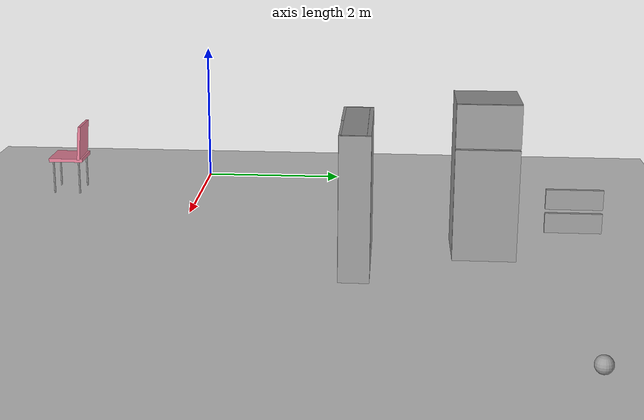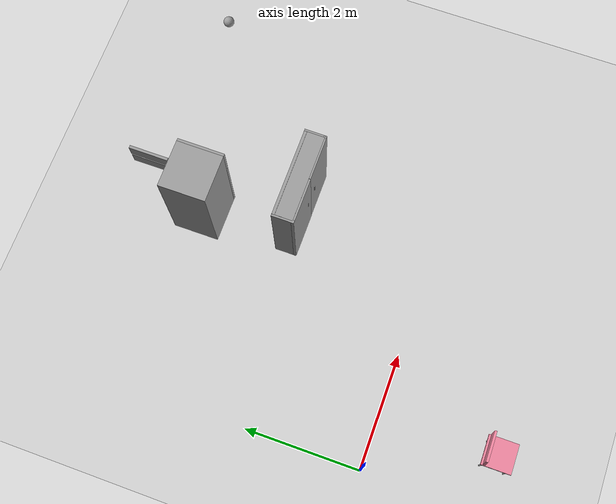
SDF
<sdf version="1.6">
 <world name="default">
  <model name="ground_plane">
   <static>1</static>
   <link name="link">
    <collision name="collision">
     <geometry><plane><normal>0 0 1</normal><size>100 100</size></plane></geometry>
     <surface>
      <contact><collide_bitmask>65535</collide_bitmask></contact>
      <friction><ode><mu>100</mu><mu2>50</mu2></ode></friction>
     </surface>
    </collision>
    <visual name="visual">
     <cast_shadows>0</cast_shadows>
     <geometry><plane><normal>0 0 1</normal><size>100 100</size></plane></geometry>
     <material>
      <script><uri>file://media/materials/scripts/gazebo.material</uri><name>Gazebo/Grey</name></script>
     </material>
    </visual>
   </link>
  </model>
  <model name="my_wardrobe_0">
   <link name="link">
    <inertial>
     <mass>1</mass>
     <inertia>
      <ixx>0.166667</ixx>
      <ixy>0</ixy>
      <ixz>0</ixz>
      <iyy>0.166667</iyy>
      <iyz>0</iyz>
      <izz>0.166667</izz>
     </inertia>
    </inertial>
    <pose>0.010503 -0.018536 0.006993 0 -0 0</pose>
    <visual name="visual">
     <geometry><box><size>0.05 1.5 1.8</size></box></geometry>
     <material>
      <script><name>Gazebo/Grey</name><uri>file://media/materials/scripts/gazebo.material</uri></script>
      <shader type="pixel"><normal_map>__default__</normal_map></shader>
      <ambient>0.9 0.9 0.9 1</ambient>
      <diffuse>0.9 0.9 0.9 1</diffuse>
      <specular>0.01 0.01 0.01 1</specular>
      <emissive>0 0 0 1</emissive>
     </material>
     <pose>0 0 0.9 0 -0 0</pose>
    </visual>
    <collision name="collision">
     <pose>0 0 0.9 0 -0 0</pose>
     <geometry><box><size>0.05 1.5 1.8</size></box></geometry>
     <surface>
      <friction>
       <ode><mu>1</mu><mu2>1</mu2><fdir1>0 0 0</fdir1><slip1>0</slip1><slip2>0</slip2></ode>
       <torsional>
        <coefficient>1</coefficient>
        <patch_radius>0</patch_radius>
        <surface_radius>0</surface_radius>
        <use_patch_radius>1</use_patch_radius>
        <ode><slip>0</slip></ode>
       </torsional>
      </friction>
      <bounce><restitution_coefficient>0</restitution_coefficient><threshold>1e+06</threshold></bounce>
      <contact>
       <collide_without_contact>0</collide_without_contact>
       <collide_without_contact_bitmask>1</collide_without_contact_bitmask>
       <collide_bitmask>1</collide_bitmask>
       <ode>
        <soft_cfm>0</soft_cfm>
        <soft_erp>0.2</soft_erp>
        <kp>1e+13</kp>
        <kd>1</kd>
        <max_vel>0.01</max_vel>
        <min_depth>0</min_depth>
       </ode>
       <bullet>
        <split_impulse>1</split_impulse>
        <split_impulse_penetration_threshold>-0.01</split_impulse_penetration_threshold>
        <soft_cfm>0</soft_cfm>
        <soft_erp>0.2</soft_erp>
        <kp>1e+13</kp>
        <kd>1</kd>
       </bullet>
      </contact>
     </surface>
    </collision>
   </link>
   <link name="link_1">
    <inertial>
     <mass>1</mass>
     <inertia>
      <ixx>0.166667</ixx>
      <ixy>0</ixy>
      <ixz>0</ixz>
      <iyy>0.166667</iyy>
      <iyz>0</iyz>
      <izz>0.166667</izz>
     </inertia>
    </inertial>
    <pose>0.374225 0.148278 0.975818 0 0 -1.57963</pose>
    <visual name="visual">
     <geometry><box><size>0.015 0.01 0.15</size></box></geometry>
     <material>
      <lighting>1</lighting>
      <script><uri>file://media/materials/scripts/gazebo.material</uri><name>Gazebo/Grey</name></script>
      <shader type="pixel"><normal_map>__default__</normal_map></shader>
      <ambient>0.3 0.3 0.3 1</ambient>
      <diffuse>0.7 0.7 0.7 1</diffuse>
      <specular>0.01 0.01 0.01 1</specular>
      <emissive>0 0 0 1</emissive>
     </material>
    </visual>
    <collision name="collision">
     <geometry><box><size>0.015 0.01 0.15</size></box></geometry>
     <surface>
      <friction>
       <ode><mu>1</mu><mu2>1</mu2><fdir1>0 0 0</fdir1><slip1>0</slip1><slip2>0</slip2></ode>
       <torsional>
        <coefficient>1</coefficient>
        <patch_radius>0</patch_radius>
        <surface_radius>0</surface_radius>
        <use_patch_radius>1</use_patch_radius>
        <ode><slip>0</slip></ode>
       </torsional>
      </friction>
      <bounce><restitution_coefficient>0</restitution_coefficient><threshold>1e+06</threshold></bounce>
      <contact>
       <collide_without_contact>0</collide_without_contact>
       <collide_without_contact_bitmask>1</collide_without_contact_bitmask>
       <collide_bitmask>1</collide_bitmask>
       <ode>
        <soft_cfm>0</soft_cfm>
        <soft_erp>0.2</soft_erp>
        <kp>1e+13</kp>
        <kd>1</kd>
        <max_vel>0.01</max_vel>
        <min_depth>0</min_depth>
       </ode>
       <bullet>
        <split_impulse>1</split_impulse>
        <split_impulse_penetration_threshold>-0.01</split_impulse_penetration_threshold>
        <soft_cfm>0</soft_cfm>
        <soft_erp>0.2</soft_erp>
        <kp>1e+13</kp>
        <kd>1</kd>
       </bullet>
      </contact>
     </surface>
    </collision>
   </link>
   <link name="link_1_clone">
    <inertial>
     <mass>1</mass>
     <inertia>
      <ixx>0.166667</ixx>
      <ixy>0</ixy>
      <ixz>0</ixz>
      <iyy>0.166667</iyy>
      <iyz>0</iyz>
      <izz>0.166667</izz>
     </inertia>
    </inertial>
    <pose>0.36807 -0.165856 0.973071 0 -0 3.12392</pose>
    <visual name="visual">
     <geometry><box><size>0.015 0.01 0.15</size></box></geometry>
     <material>
      <lighting>1</lighting>
      <script><uri>file://media/materials/scripts/gazebo.material</uri><name>Gazebo/Grey</name></script>
      <shader type="pixel"><normal_map>__default__</normal_map></shader>
      <ambient>0.3 0.3 0.3 1</ambient>
      <diffuse>0.7 0.7 0.7 1</diffuse>
      <specular>0.01 0.01 0.01 1</specular>
      <emissive>0 0 0 1</emissive>
     </material>
    </visual>
    <collision name="collision">
     <geometry><box><size>0.015 0.01 0.15</size></box></geometry>
     <surface>
      <friction>
       <ode><mu>1</mu><mu2>1</mu2><fdir1>0 0 0</fdir1><slip1>0</slip1><slip2>0</slip2></ode>
       <torsional>
        <coefficient>1</coefficient>
        <patch_radius>0</patch_radius>
        <surface_radius>0</surface_radius>
        <use_patch_radius>1</use_patch_radius>
        <ode><slip>0</slip></ode>
       </torsional>
      </friction>
      <bounce><restitution_coefficient>0</restitution_coefficient><threshold>1e+06</threshold></bounce>
      <contact>
       <collide_without_contact>0</collide_without_contact>
       <collide_without_contact_bitmask>1</collide_without_contact_bitmask>
       <collide_bitmask>1</collide_bitmask>
       <ode>
        <soft_cfm>0</soft_cfm>
        <soft_erp>0.2</soft_erp>
        <kp>1e+13</kp>
        <kd>1</kd>
        <max_vel>0.01</max_vel>
        <min_depth>0</min_depth>
       </ode>
       <bullet>
        <split_impulse>1</split_impulse>
        <split_impulse_penetration_threshold>-0.01</split_impulse_penetration_threshold>
        <soft_cfm>0</soft_cfm>
        <soft_erp>0.2</soft_erp>
        <kp>1e+13</kp>
        <kd>1</kd>
       </bullet>
      </contact>
     </surface>
    </collision>
   </link>
   <link name="link_clone">
    <inertial>
     <mass>1</mass>
     <inertia>
      <ixx>0.166667</ixx>
      <ixy>0</ixy>
      <ixz>0</ixz>
      <iyy>0.166667</iyy>
      <iyz>0</iyz>
      <izz>0.166667</izz>
     </inertia>
    </inertial>
    <pose>0.199559 -0.011174 -1.077 1.1e-05 -0.001065 2e-06</pose>
    <visual name="visual">
     <geometry><box><size>0.3 1.5 0.04</size></box></geometry>
     <material>
      <script><name>Gazebo/Grey</name><uri>file://media/materials/scripts/gazebo.material</uri></script>
      <shader type="pixel"><normal_map>__default__</normal_map></shader>
      <ambient>0.9 0.9 0.9 1</ambient>
      <diffuse>0.9 0.9 0.9 1</diffuse>
      <specular>0.01 0.01 0.01 1</specular>
      <emissive>0 0 0 1</emissive>
     </material>
     <pose>0 0 1.1 0 -0 0</pose>
    </visual>
    <collision name="collision">
     <pose>0 0 1.1 0 -0 0</pose>
     <geometry><box><size>0.3 1.5 0.04</size></box></geometry>
     <surface>
      <friction>
       <ode><mu>1</mu><mu2>1</mu2><fdir1>0 0 0</fdir1><slip1>0</slip1><slip2>0</slip2></ode>
       <torsional>
        <coefficient>1</coefficient>
        <patch_radius>0</patch_radius>
        <surface_radius>0</surface_radius>
        <use_patch_radius>1</use_patch_radius>
        <ode><slip>0</slip></ode>
       </torsional>
      </friction>
      <bounce><restitution_coefficient>0</restitution_coefficient><threshold>1e+06</threshold></bounce>
      <contact>
       <collide_without_contact>0</collide_without_contact>
       <collide_without_contact_bitmask>1</collide_without_contact_bitmask>
       <collide_bitmask>1</collide_bitmask>
       <ode>
        <soft_cfm>0</soft_cfm>
        <soft_erp>0.2</soft_erp>
        <kp>1e+13</kp>
        <kd>1</kd>
        <max_vel>0.01</max_vel>
        <min_depth>0</min_depth>
       </ode>
       <bullet>
        <split_impulse>1</split_impulse>
        <split_impulse_penetration_threshold>-0.01</split_impulse_penetration_threshold>
        <soft_cfm>0</soft_cfm>
        <soft_erp>0.2</soft_erp>
        <kp>1e+13</kp>
        <kd>1</kd>
       </bullet>
      </contact>
     </surface>
    </collision>
   </link>
   <link name="link_clone_0">
    <inertial>
     <mass>1</mass>
     <inertia>
      <ixx>0.166667</ixx>
      <ixy>0</ixy>
      <ixz>0</ixz>
      <iyy>0.166667</iyy>
      <iyz>0</iyz>
      <izz>0.166667</izz>
     </inertia>
    </inertial>
    <pose>0.1762 -0.777121 0.006003 0 -0 0</pose>
    <visual name="visual">
     <geometry><box><size>0.05 0.38 1.8</size></box></geometry>
     <material>
      <script><name>Gazebo/Grey</name><uri>file://media/materials/scripts/gazebo.material</uri></script>
      <shader type="pixel"><normal_map>__default__</normal_map></shader>
      <ambient>0.9 0.9 0.9 1</ambient>
      <diffuse>0.9 0.9 0.9 1</diffuse>
      <specular>0.01 0.01 0.01 1</specular>
      <emissive>0 0 0 1</emissive>
     </material>
     <pose>0 0 0.9 0 -0 1.5707</pose>
    </visual>
    <collision name="collision">
     <pose>0 0 0.9 0 -0 1.5707</pose>
     <geometry><box><size>0.05 0.38 1.8</size></box></geometry>
     <surface>
      <friction>
       <ode><mu>1</mu><mu2>1</mu2><fdir1>0 0 0</fdir1><slip1>0</slip1><slip2>0</slip2></ode>
       <torsional>
        <coefficient>1</coefficient>
        <patch_radius>0</patch_radius>
        <surface_radius>0</surface_radius>
        <use_patch_radius>1</use_patch_radius>
        <ode><slip>0</slip></ode>
       </torsional>
      </friction>
      <bounce><restitution_coefficient>0</restitution_coefficient><threshold>1e+06</threshold></bounce>
      <contact>
       <collide_without_contact>0</collide_without_contact>
       <collide_without_contact_bitmask>1</collide_without_contact_bitmask>
       <collide_bitmask>1</collide_bitmask>
       <ode>
        <soft_cfm>0</soft_cfm>
        <soft_erp>0.2</soft_erp>
        <kp>1e+13</kp>
        <kd>1</kd>
        <max_vel>0.01</max_vel>
        <min_depth>0</min_depth>
       </ode>
       <bullet>
        <split_impulse>1</split_impulse>
        <split_impulse_penetration_threshold>-0.01</split_impulse_penetration_threshold>
        <soft_cfm>0</soft_cfm>
        <soft_erp>0.2</soft_erp>
        <kp>1e+13</kp>
        <kd>1</kd>
       </bullet>
      </contact>
     </surface>
    </collision>
   </link>
   <link name="link_clone_0_clone">
    <inertial>
     <mass>1</mass>
     <inertia>
      <ixx>0.166667</ixx>
      <ixy>0</ixy>
      <ixz>0</ixz>
      <iyy>0.166667</iyy>
      <iyz>0</iyz>
      <izz>0.166667</izz>
     </inertia>
    </inertial>
    <pose>0.173251 0.740189 0.006003 0 -0 0</pose>
    <visual name="visual">
     <geometry><box><size>0.05 0.38 1.8</size></box></geometry>
     <material>
      <script><name>Gazebo/Grey</name><uri>file://media/materials/scripts/gazebo.material</uri></script>
      <shader type="pixel"><normal_map>__default__</normal_map></shader>
      <ambient>0.9 0.9 0.9 1</ambient>
      <diffuse>0.9 0.9 0.9 1</diffuse>
      <specular>0.01 0.01 0.01 1</specular>
      <emissive>0 0 0 1</emissive>
     </material>
     <pose>0 0 0.9 0 -0 1.5707</pose>
    </visual>
    <collision name="collision">
     <pose>0 0 0.9 0 -0 1.5707</pose>
     <geometry><box><size>0.05 0.38 1.8</size></box></geometry>
     <surface>
      <friction>
       <ode><mu>1</mu><mu2>1</mu2><fdir1>0 0 0</fdir1><slip1>0</slip1><slip2>0</slip2></ode>
       <torsional>
        <coefficient>1</coefficient>
        <patch_radius>0</patch_radius>
        <surface_radius>0</surface_radius>
        <use_patch_radius>1</use_patch_radius>
        <ode><slip>0</slip></ode>
       </torsional>
      </friction>
      <bounce><restitution_coefficient>0</restitution_coefficient><threshold>1e+06</threshold></bounce>
      <contact>
       <collide_without_contact>0</collide_without_contact>
       <collide_without_contact_bitmask>1</collide_without_contact_bitmask>
       <collide_bitmask>1</collide_bitmask>
       <ode>
        <soft_cfm>0</soft_cfm>
        <soft_erp>0.2</soft_erp>
        <kp>1e+13</kp>
        <kd>1</kd>
        <max_vel>0.01</max_vel>
        <min_depth>0</min_depth>
       </ode>
       <bullet>
        <split_impulse>1</split_impulse>
        <split_impulse_penetration_threshold>-0.01</split_impulse_penetration_threshold>
        <soft_cfm>0</soft_cfm>
        <soft_erp>0.2</soft_erp>
        <kp>1e+13</kp>
        <kd>1</kd>
       </bullet>
      </contact>
     </surface>
    </collision>
   </link>
   <link name="link_clone_0_clone_0">
    <inertial>
     <mass>1</mass>
     <inertia>
      <ixx>0.166667</ixx>
      <ixy>0</ixy>
      <ixz>0</ixz>
      <iyy>0.166667</iyy>
      <iyz>0</iyz>
      <izz>0.166667</izz>
     </inertia>
    </inertial>
    <pose>0.345768 -0.414419 0.006003 0 -0 0</pose>
    <visual name="visual">
     <geometry><box><size>0.05 0.78 1.8</size></box></geometry>
     <material>
      <script><name>Gazebo/Grey</name><uri>file://media/materials/scripts/gazebo.material</uri></script>
      <shader type="pixel"><normal_map>__default__</normal_map></shader>
      <ambient>0.87 0.87 0.87 1</ambient>
      <diffuse>0.87 0.87 0.87 1</diffuse>
      <specular>0.01 0.01 0.01 1</specular>
      <emissive>0 0 0 1</emissive>
     </material>
     <pose>0 0 0.9 0 -0 0</pose>
    </visual>
    <collision name="collision">
     <pose>0 0 0.9 0 -0 0</pose>
     <geometry><box><size>0.05 0.78 1.8</size></box></geometry>
     <surface>
      <friction>
       <ode><mu>1</mu><mu2>1</mu2><fdir1>0 0 0</fdir1><slip1>0</slip1><slip2>0</slip2></ode>
       <torsional>
        <coefficient>1</coefficient>
        <patch_radius>0</patch_radius>
        <surface_radius>0</surface_radius>
        <use_patch_radius>1</use_patch_radius>
        <ode><slip>0</slip></ode>
       </torsional>
      </friction>
      <bounce><restitution_coefficient>0</restitution_coefficient><threshold>1e+06</threshold></bounce>
      <contact>
       <collide_without_contact>0</collide_without_contact>
       <collide_without_contact_bitmask>1</collide_without_contact_bitmask>
       <collide_bitmask>1</collide_bitmask>
       <ode>
        <soft_cfm>0</soft_cfm>
        <soft_erp>0.2</soft_erp>
        <kp>1e+13</kp>
        <kd>1</kd>
        <max_vel>0.01</max_vel>
        <min_depth>0</min_depth>
       </ode>
       <bullet>
        <split_impulse>1</split_impulse>
        <split_impulse_penetration_threshold>-0.01</split_impulse_penetration_threshold>
        <soft_cfm>0</soft_cfm>
        <soft_erp>0.2</soft_erp>
        <kp>1e+13</kp>
        <kd>1</kd>
       </bullet>
      </contact>
     </surface>
    </collision>
   </link>
   <link name="link_clone_0_clone_0_clone">
    <inertial>
     <mass>1</mass>
     <inertia>
      <ixx>0.166667</ixx>
      <ixy>0</ixy>
      <ixz>0</ixz>
      <iyy>0.166667</iyy>
      <iyz>0</iyz>
      <izz>0.166667</izz>
     </inertia>
    </inertial>
    <pose>0.34164 0.370965 0.006003 0 -0 0</pose>
    <visual name="visual">
     <geometry><box><size>0.05 0.78 1.8</size></box></geometry>
     <material>
      <script><name>Gazebo/Grey</name><uri>file://media/materials/scripts/gazebo.material</uri></script>
      <shader type="pixel"><normal_map>__default__</normal_map></shader>
      <ambient>0.87 0.87 0.87 1</ambient>
      <diffuse>0.87 0.87 0.87 1</diffuse>
      <specular>0.01 0.01 0.01 1</specular>
      <emissive>0 0 0 1</emissive>
     </material>
     <pose>0 0 0.9 0 -0 0</pose>
    </visual>
    <collision name="collision">
     <pose>0 0 0.9 0 -0 0</pose>
     <geometry><box><size>0.05 0.78 1.8</size></box></geometry>
     <surface>
      <friction>
       <ode><mu>1</mu><mu2>1</mu2><fdir1>0 0 0</fdir1><slip1>0</slip1><slip2>0</slip2></ode>
       <torsional>
        <coefficient>1</coefficient>
        <patch_radius>0</patch_radius>
        <surface_radius>0</surface_radius>
        <use_patch_radius>1</use_patch_radius>
        <ode><slip>0</slip></ode>
       </torsional>
      </friction>
      <bounce><restitution_coefficient>0</restitution_coefficient><threshold>1e+06</threshold></bounce>
      <contact>
       <collide_without_contact>0</collide_without_contact>
       <collide_without_contact_bitmask>1</collide_without_contact_bitmask>
       <collide_bitmask>1</collide_bitmask>
       <ode>
        <soft_cfm>0</soft_cfm>
        <soft_erp>0.2</soft_erp>
        <kp>1e+13</kp>
        <kd>1</kd>
        <max_vel>0.01</max_vel>
        <min_depth>0</min_depth>
       </ode>
       <bullet>
        <split_impulse>1</split_impulse>
        <split_impulse_penetration_threshold>-0.01</split_impulse_penetration_threshold>
        <soft_cfm>0</soft_cfm>
        <soft_erp>0.2</soft_erp>
        <kp>1e+13</kp>
        <kd>1</kd>
       </bullet>
      </contact>
     </surface>
    </collision>
   </link>
   <link name="link_clone_clone_0">
    <inertial>
     <mass>1</mass>
     <inertia>
      <ixx>0.166667</ixx>
      <ixy>0</ixy>
      <ixz>0</ixz>
      <iyy>0.166667</iyy>
      <iyz>0</iyz>
      <izz>0.166667</izz>
     </inertia>
    </inertial>
    <pose>0.186363 -0.017339 0.93719 2.2e-05 0.000604 0.000114</pose>
    <gravity>0</gravity>
    <visual name="visual">
     <geometry><box><size>0.3 1.5 0.04</size></box></geometry>
     <material>
      <script><name>Gazebo/Grey</name><uri>file://media/materials/scripts/gazebo.material</uri></script>
      <shader type="pixel"><normal_map>__default__</normal_map></shader>
      <ambient>0.9 0.9 0.9 1</ambient>
      <diffuse>0.9 0.9 0.9 1</diffuse>
      <specular>0.01 0.01 0.01 1</specular>
      <emissive>0 0 0 1</emissive>
     </material>
     <pose>0 0 0.85 0 -0 0</pose>
    </visual>
    <collision name="collision">
     <pose>0 0 0.85 0 -0 0</pose>
     <geometry><box><size>0.3 1.5 0.04</size></box></geometry>
     <surface>
      <friction>
       <ode><mu>1</mu><mu2>1</mu2><fdir1>0 0 0</fdir1><slip1>0</slip1><slip2>0</slip2></ode>
       <torsional>
        <coefficient>1</coefficient>
        <patch_radius>0</patch_radius>
        <surface_radius>0</surface_radius>
        <use_patch_radius>1</use_patch_radius>
        <ode><slip>0</slip></ode>
       </torsional>
      </friction>
      <bounce><restitution_coefficient>0</restitution_coefficient><threshold>1e+06</threshold></bounce>
      <contact>
       <collide_without_contact>0</collide_without_contact>
       <collide_without_contact_bitmask>1</collide_without_contact_bitmask>
       <collide_bitmask>1</collide_bitmask>
       <ode>
        <soft_cfm>0</soft_cfm>
        <soft_erp>0.2</soft_erp>
        <kp>1e+13</kp>
        <kd>1</kd>
        <max_vel>0.01</max_vel>
        <min_depth>0</min_depth>
       </ode>
       <bullet>
        <split_impulse>1</split_impulse>
        <split_impulse_penetration_threshold>-0.01</split_impulse_penetration_threshold>
        <soft_cfm>0</soft_cfm>
        <soft_erp>0.2</soft_erp>
        <kp>1e+13</kp>
        <kd>1</kd>
       </bullet>
      </contact>
     </surface>
    </collision>
   </link>
   <static>1</static>
   <pose>3.87102 2.58375 0 0 0 -1.57413</pose>
  </model>
  <model name="my_chair">
   <link name="link">
    <inertial>
     <mass>1</mass>
     <inertia>
      <ixx>0.166667</ixx>
      <ixy>0</ixy>
      <ixz>0</ixz>
      <iyy>0.166667</iyy>
      <iyz>0</iyz>
      <izz>0.166667</izz>
     </inertia>
    </inertial>
    <gravity>0</gravity>
    <visual name="visual">
     <geometry><box><size>0.5 0.5 0.05</size></box></geometry>
     <material>
      <script><name>Gazebo/Grey</name><uri>file://media/materials/scripts/gazebo.material</uri></script>
      <shader type="pixel"><normal_map>__default__</normal_map></shader>
      <ambient>0.9 0.5 0.6 1</ambient>
      <diffuse>0.9 0.5 0.6 1</diffuse>
      <specular>0.01 0.01 0.01 1</specular>
      <emissive>0 0 0 1</emissive>
     </material>
     <pose>0 0 0.5 0 -0 0</pose>
    </visual>
    <collision name="collision">
     <pose>0 0 0.5 0 -0 0</pose>
     <geometry><box><size>0.5 0.5 0.05</size></box></geometry>
     <surface>
      <friction>
       <ode><mu>1</mu><mu2>1</mu2><fdir1>0 0 0</fdir1><slip1>0</slip1><slip2>0</slip2></ode>
       <torsional>
        <coefficient>1</coefficient>
        <patch_radius>0</patch_radius>
        <surface_radius>0</surface_radius>
        <use_patch_radius>1</use_patch_radius>
        <ode><slip>0</slip></ode>
       </torsional>
      </friction>
      <bounce><restitution_coefficient>0</restitution_coefficient><threshold>1e+06</threshold></bounce>
      <contact>
       <collide_without_contact>0</collide_without_contact>
       <collide_without_contact_bitmask>1</collide_without_contact_bitmask>
       <collide_bitmask>1</collide_bitmask>
       <ode>
        <soft_cfm>0</soft_cfm>
        <soft_erp>0.2</soft_erp>
        <kp>1e+13</kp>
        <kd>1</kd>
        <max_vel>0.01</max_vel>
        <min_depth>0</min_depth>
       </ode>
       <bullet>
        <split_impulse>1</split_impulse>
        <split_impulse_penetration_threshold>-0.01</split_impulse_penetration_threshold>
        <soft_cfm>0</soft_cfm>
        <soft_erp>0.2</soft_erp>
        <kp>1e+13</kp>
        <kd>1</kd>
       </bullet>
      </contact>
     </surface>
    </collision>
   </link>
   <link name="link_0">
    <inertial>
     <mass>1</mass>
     <inertia><ixx>0.145833</ixx><ixy>0</ixy><ixz>0</ixz><iyy>0.145833</iyy><iyz>0</iyz><izz>0.125</izz></inertia>
    </inertial>
    <pose>-0.200315 -0.184767 -0.272701 -0 -0 -0</pose>
    <gravity>0</gravity>
    <visual name="visual">
     <pose>0 0 0.5 0 -0 0</pose>
     <geometry><cylinder><radius>0.013</radius><length>0.5</length></cylinder></geometry>
     <material>
      <lighting>1</lighting>
      <script><uri>file://media/materials/scripts/gazebo.material</uri><name>Gazebo/Grey</name></script>
      <shader type="pixel"><normal_map>__default__</normal_map></shader>
      <ambient>0.3 0.3 0.3 1</ambient>
      <diffuse>0.7 0.7 0.7 1</diffuse>
      <specular>0.01 0.01 0.01 1</specular>
      <emissive>0 0 0 1</emissive>
     </material>
    </visual>
    <collision name="collision">
     <pose>0 0 0.5 0 -0 0</pose>
     <geometry><cylinder><radius>0.013</radius><length>0.5</length></cylinder></geometry>
     <surface>
      <friction>
       <ode><mu>1</mu><mu2>1</mu2><fdir1>0 0 0</fdir1><slip1>0</slip1><slip2>0</slip2></ode>
       <torsional>
        <coefficient>1</coefficient>
        <patch_radius>0</patch_radius>
        <surface_radius>0</surface_radius>
        <use_patch_radius>1</use_patch_radius>
        <ode><slip>0</slip></ode>
       </torsional>
      </friction>
      <bounce><restitution_coefficient>0</restitution_coefficient><threshold>1e+06</threshold></bounce>
      <contact>
       <collide_without_contact>0</collide_without_contact>
       <collide_without_contact_bitmask>1</collide_without_contact_bitmask>
       <collide_bitmask>1</collide_bitmask>
       <ode>
        <soft_cfm>0</soft_cfm>
        <soft_erp>0.2</soft_erp>
        <kp>1e+13</kp>
        <kd>1</kd>
        <max_vel>0.01</max_vel>
        <min_depth>0</min_depth>
       </ode>
       <bullet>
        <split_impulse>1</split_impulse>
        <split_impulse_penetration_threshold>-0.01</split_impulse_penetration_threshold>
        <soft_cfm>0</soft_cfm>
        <soft_erp>0.2</soft_erp>
        <kp>1e+13</kp>
        <kd>1</kd>
       </bullet>
      </contact>
     </surface>
    </collision>
   </link>
   <link name="link_0_clone">
    <inertial>
     <mass>1</mass>
     <inertia><ixx>0.145833</ixx><ixy>0</ixy><ixz>0</ixz><iyy>0.145833</iyy><iyz>0</iyz><izz>0.125</izz></inertia>
    </inertial>
    <pose>-0.198839 0.194466 -0.272701 -0 -0 -0</pose>
    <gravity>0</gravity>
    <visual name="visual">
     <pose>0 0 0.5 0 -0 0</pose>
     <geometry><cylinder><radius>0.013</radius><length>0.5</length></cylinder></geometry>
     <material>
      <lighting>1</lighting>
      <script><uri>file://media/materials/scripts/gazebo.material</uri><name>Gazebo/Grey</name></script>
      <shader type="pixel"><normal_map>__default__</normal_map></shader>
      <ambient>0.3 0.3 0.3 1</ambient>
      <diffuse>0.7 0.7 0.7 1</diffuse>
      <specular>0.01 0.01 0.01 1</specular>
      <emissive>0 0 0 1</emissive>
     </material>
    </visual>
    <collision name="collision">
     <pose>0 0 0.5 0 -0 0</pose>
     <geometry><cylinder><radius>0.013</radius><length>0.5</length></cylinder></geometry>
     <surface>
      <friction>
       <ode><mu>1</mu><mu2>1</mu2><fdir1>0 0 0</fdir1><slip1>0</slip1><slip2>0</slip2></ode>
       <torsional>
        <coefficient>1</coefficient>
        <patch_radius>0</patch_radius>
        <surface_radius>0</surface_radius>
        <use_patch_radius>1</use_patch_radius>
        <ode><slip>0</slip></ode>
       </torsional>
      </friction>
      <bounce><restitution_coefficient>0</restitution_coefficient><threshold>1e+06</threshold></bounce>
      <contact>
       <collide_without_contact>0</collide_without_contact>
       <collide_without_contact_bitmask>1</collide_without_contact_bitmask>
       <collide_bitmask>1</collide_bitmask>
       <ode>
        <soft_cfm>0</soft_cfm>
        <soft_erp>0.2</soft_erp>
        <kp>1e+13</kp>
        <kd>1</kd>
        <max_vel>0.01</max_vel>
        <min_depth>0</min_depth>
       </ode>
       <bullet>
        <split_impulse>1</split_impulse>
        <split_impulse_penetration_threshold>-0.01</split_impulse_penetration_threshold>
        <soft_cfm>0</soft_cfm>
        <soft_erp>0.2</soft_erp>
        <kp>1e+13</kp>
        <kd>1</kd>
       </bullet>
      </contact>
     </surface>
    </collision>
   </link>
   <link name="link_0_clone_0">
    <inertial>
     <mass>1</mass>
     <inertia><ixx>0.145833</ixx><ixy>0</ixy><ixz>0</ixz><iyy>0.145833</iyy><iyz>0</iyz><izz>0.125</izz></inertia>
    </inertial>
    <pose>0.211914 -0.198881 -0.272701 -0 -0 -0</pose>
    <gravity>0</gravity>
    <visual name="visual">
     <pose>0 0 0.5 0 -0 0</pose>
     <geometry><cylinder><radius>0.013</radius><length>0.5</length></cylinder></geometry>
     <material>
      <lighting>1</lighting>
      <script><uri>file://media/materials/scripts/gazebo.material</uri><name>Gazebo/Grey</name></script>
      <shader type="pixel"><normal_map>__default__</normal_map></shader>
      <ambient>0.3 0.3 0.3 1</ambient>
      <diffuse>0.7 0.7 0.7 1</diffuse>
      <specular>0.01 0.01 0.01 1</specular>
      <emissive>0 0 0 1</emissive>
     </material>
    </visual>
    <collision name="collision">
     <pose>0 0 0.5 0 -0 0</pose>
     <geometry><cylinder><radius>0.013</radius><length>0.5</length></cylinder></geometry>
     <surface>
      <friction>
       <ode><mu>1</mu><mu2>1</mu2><fdir1>0 0 0</fdir1><slip1>0</slip1><slip2>0</slip2></ode>
       <torsional>
        <coefficient>1</coefficient>
        <patch_radius>0</patch_radius>
        <surface_radius>0</surface_radius>
        <use_patch_radius>1</use_patch_radius>
        <ode><slip>0</slip></ode>
       </torsional>
      </friction>
      <bounce><restitution_coefficient>0</restitution_coefficient><threshold>1e+06</threshold></bounce>
      <contact>
       <collide_without_contact>0</collide_without_contact>
       <collide_without_contact_bitmask>1</collide_without_contact_bitmask>
       <collide_bitmask>1</collide_bitmask>
       <ode>
        <soft_cfm>0</soft_cfm>
        <soft_erp>0.2</soft_erp>
        <kp>1e+13</kp>
        <kd>1</kd>
        <max_vel>0.01</max_vel>
        <min_depth>0</min_depth>
       </ode>
       <bullet>
        <split_impulse>1</split_impulse>
        <split_impulse_penetration_threshold>-0.01</split_impulse_penetration_threshold>
        <soft_cfm>0</soft_cfm>
        <soft_erp>0.2</soft_erp>
        <kp>1e+13</kp>
        <kd>1</kd>
       </bullet>
      </contact>
     </surface>
    </collision>
   </link>
   <link name="link_0_clone_1">
    <inertial>
     <mass>1</mass>
     <inertia><ixx>0.145833</ixx><ixy>0</ixy><ixz>0</ixz><iyy>0.145833</iyy><iyz>0</iyz><izz>0.125</izz></inertia>
    </inertial>
    <pose>0.207422 0.203987 -0.272701 -0 -0 -0</pose>
    <gravity>0</gravity>
    <visual name="visual">
     <pose>0 0 0.5 0 -0 0</pose>
     <geometry><cylinder><radius>0.013</radius><length>0.5</length></cylinder></geometry>
     <material>
      <lighting>1</lighting>
      <script><uri>file://media/materials/scripts/gazebo.material</uri><name>Gazebo/Grey</name></script>
      <shader type="pixel"><normal_map>__default__</normal_map></shader>
      <ambient>0.3 0.3 0.3 1</ambient>
      <diffuse>0.7 0.7 0.7 1</diffuse>
      <specular>0.01 0.01 0.01 1</specular>
      <emissive>0 0 0 1</emissive>
     </material>
    </visual>
    <collision name="collision">
     <pose>0 0 0.5 0 -0 0</pose>
     <geometry><cylinder><radius>0.013</radius><length>0.5</length></cylinder></geometry>
     <surface>
      <friction>
       <ode><mu>1</mu><mu2>1</mu2><fdir1>0 0 0</fdir1><slip1>0</slip1><slip2>0</slip2></ode>
       <torsional>
        <coefficient>1</coefficient>
        <patch_radius>0</patch_radius>
        <surface_radius>0</surface_radius>
        <use_patch_radius>1</use_patch_radius>
        <ode><slip>0</slip></ode>
       </torsional>
      </friction>
      <bounce><restitution_coefficient>0</restitution_coefficient><threshold>1e+06</threshold></bounce>
      <contact>
       <collide_without_contact>0</collide_without_contact>
       <collide_without_contact_bitmask>1</collide_without_contact_bitmask>
       <collide_bitmask>1</collide_bitmask>
       <ode>
        <soft_cfm>0</soft_cfm>
        <soft_erp>0.2</soft_erp>
        <kp>1e+13</kp>
        <kd>1</kd>
        <max_vel>0.01</max_vel>
        <min_depth>0</min_depth>
       </ode>
       <bullet>
        <split_impulse>1</split_impulse>
        <split_impulse_penetration_threshold>-0.01</split_impulse_penetration_threshold>
        <soft_cfm>0</soft_cfm>
        <soft_erp>0.2</soft_erp>
        <kp>1e+13</kp>
        <kd>1</kd>
       </bullet>
      </contact>
     </surface>
    </collision>
   </link>
   <link name="link_clone">
    <inertial>
     <mass>1</mass>
     <inertia>
      <ixx>0.166667</ixx>
      <ixy>0</ixy>
      <ixz>0</ixz>
      <iyy>0.166667</iyy>
      <iyz>0</iyz>
      <izz>0.166667</izz>
     </inertia>
    </inertial>
    <pose>-0.00806 -0.212496 0.264135 -0 -0 -0</pose>
    <gravity>0</gravity>
    <visual name="visual">
     <geometry><box><size>0.5 0.5 0.04</size></box></geometry>
     <material>
      <script><name>Gazebo/Grey</name><uri>file://media/materials/scripts/gazebo.material</uri></script>
      <shader type="pixel"><normal_map>__default__</normal_map></shader>
      <ambient>0.9 0.5 0.6 1</ambient>
      <diffuse>0.9 0.5 0.6 1</diffuse>
      <specular>0.01 0.01 0.01 1</specular>
      <emissive>0 0 0 1</emissive>
     </material>
     <pose>0 0 0.5 -1.5 0 0</pose>
    </visual>
    <collision name="collision">
     <pose>0 0 0.5 -1.5 0 0</pose>
     <geometry><box><size>0.5 0.5 0.04</size></box></geometry>
     <surface>
      <friction>
       <ode><mu>1</mu><mu2>1</mu2><fdir1>0 0 0</fdir1><slip1>0</slip1><slip2>0</slip2></ode>
       <torsional>
        <coefficient>1</coefficient>
        <patch_radius>0</patch_radius>
        <surface_radius>0</surface_radius>
        <use_patch_radius>1</use_patch_radius>
        <ode><slip>0</slip></ode>
       </torsional>
      </friction>
      <bounce><restitution_coefficient>0</restitution_coefficient><threshold>1e+06</threshold></bounce>
      <contact>
       <collide_without_contact>0</collide_without_contact>
       <collide_without_contact_bitmask>1</collide_without_contact_bitmask>
       <collide_bitmask>1</collide_bitmask>
       <ode>
        <soft_cfm>0</soft_cfm>
        <soft_erp>0.2</soft_erp>
        <kp>1e+13</kp>
        <kd>1</kd>
        <max_vel>0.01</max_vel>
        <min_depth>0</min_depth>
       </ode>
       <bullet>
        <split_impulse>1</split_impulse>
        <split_impulse_penetration_threshold>-0.01</split_impulse_penetration_threshold>
        <soft_cfm>0</soft_cfm>
        <soft_erp>0.2</soft_erp>
        <kp>1e+13</kp>
        <kd>1</kd>
       </bullet>
      </contact>
     </surface>
    </collision>
   </link>
   <static>1</static>
   <pose>0.942684 -1.99137 0 0 0 -3.13848</pose>
  </model>
  <model name="my_kitchen">
   <link name="link_clone_clone_clone_0_clone">
    <inertial>
     <mass>1</mass>
     <inertia>
      <ixx>0.166667</ixx>
      <ixy>0</ixy>
      <ixz>0</ixz>
      <iyy>0.166667</iyy>
      <iyz>0</iyz>
      <izz>0.166667</izz>
     </inertia>
    </inertial>
    <pose>-0.495016 -2.64917 0.017117 0 -0 0</pose>
    <visual name="visual">
     <geometry><box><size>0.05 0.7 0.25</size></box></geometry>
     <material>
      <script><name>Gazebo/Grey</name><uri>file://media/materials/scripts/gazebo.material</uri></script>
      <shader type="pixel"><normal_map>__default__</normal_map></shader>
      <ambient>0.4 0.4 0.4 1</ambient>
      <diffuse>0.4 0.4 0.4 1</diffuse>
      <specular>0.01 0.01 0.01 1</specular>
      <emissive>0 0 0 1</emissive>
     </material>
     <pose>0 0 0.5 0 -0 0</pose>
    </visual>
    <collision name="collision">
     <pose>0 0 0.5 0 -0 0</pose>
     <geometry><box><size>0.05 0.7 0.25</size></box></geometry>
     <surface>
      <friction>
       <ode><mu>1</mu><mu2>1</mu2><fdir1>0 0 0</fdir1><slip1>0</slip1><slip2>0</slip2></ode>
       <torsional>
        <coefficient>1</coefficient>
        <patch_radius>0</patch_radius>
        <surface_radius>0</surface_radius>
        <use_patch_radius>1</use_patch_radius>
        <ode><slip>0</slip></ode>
       </torsional>
      </friction>
      <bounce><restitution_coefficient>0</restitution_coefficient><threshold>1e+06</threshold></bounce>
      <contact>
       <collide_without_contact>0</collide_without_contact>
       <collide_without_contact_bitmask>1</collide_without_contact_bitmask>
       <collide_bitmask>1</collide_bitmask>
       <ode>
        <soft_cfm>0</soft_cfm>
        <soft_erp>0.2</soft_erp>
        <kp>1e+13</kp>
        <kd>1</kd>
        <max_vel>0.01</max_vel>
        <min_depth>0</min_depth>
       </ode>
       <bullet>
        <split_impulse>1</split_impulse>
        <split_impulse_penetration_threshold>-0.01</split_impulse_penetration_threshold>
        <soft_cfm>0</soft_cfm>
        <soft_erp>0.2</soft_erp>
        <kp>1e+13</kp>
        <kd>1</kd>
       </bullet>
      </contact>
     </surface>
    </collision>
   </link>
   <link name="link_clone_clone_clone_0_clone_clone">
    <inertial>
     <mass>1</mass>
     <inertia>
      <ixx>0.166667</ixx>
      <ixy>0</ixy>
      <ixz>0</ixz>
      <iyy>0.166667</iyy>
      <iyz>0</iyz>
      <izz>0.166667</izz>
     </inertia>
    </inertial>
    <pose>-0.496692 -2.64979 0.318441 0 -0 0</pose>
    <visual name="visual">
     <geometry><box><size>0.05 0.7 0.25</size></box></geometry>
     <material>
      <script><name>Gazebo/Grey</name><uri>file://media/materials/scripts/gazebo.material</uri></script>
      <shader type="pixel"><normal_map>__default__</normal_map></shader>
      <ambient>0.4 0.4 0.4 1</ambient>
      <diffuse>0.4 0.4 0.4 1</diffuse>
      <specular>0.01 0.01 0.01 1</specular>
      <emissive>0 0 0 1</emissive>
     </material>
     <pose>0 0 0.5 0 -0 0</pose>
    </visual>
    <collision name="collision">
     <pose>0 0 0.5 0 -0 0</pose>
     <geometry><box><size>0.05 0.7 0.25</size></box></geometry>
     <surface>
      <friction>
       <ode><mu>1</mu><mu2>1</mu2><fdir1>0 0 0</fdir1><slip1>0</slip1><slip2>0</slip2></ode>
       <torsional>
        <coefficient>1</coefficient>
        <patch_radius>0</patch_radius>
        <surface_radius>0</surface_radius>
        <use_patch_radius>1</use_patch_radius>
        <ode><slip>0</slip></ode>
       </torsional>
      </friction>
      <bounce><restitution_coefficient>0</restitution_coefficient><threshold>1e+06</threshold></bounce>
      <contact>
       <collide_without_contact>0</collide_without_contact>
       <collide_without_contact_bitmask>1</collide_without_contact_bitmask>
       <collide_bitmask>1</collide_bitmask>
       <ode>
        <soft_cfm>0</soft_cfm>
        <soft_erp>0.2</soft_erp>
        <kp>1e+13</kp>
        <kd>1</kd>
        <max_vel>0.01</max_vel>
        <min_depth>0</min_depth>
       </ode>
       <bullet>
        <split_impulse>1</split_impulse>
        <split_impulse_penetration_threshold>-0.01</split_impulse_penetration_threshold>
        <soft_cfm>0</soft_cfm>
        <soft_erp>0.2</soft_erp>
        <kp>1e+13</kp>
        <kd>1</kd>
       </bullet>
      </contact>
     </surface>
    </collision>
   </link>
   <static>1</static>
   <pose>4.18115 7.73532 0 0 -0 0</pose>
  </model>
  <model name="my_fridge">
   <link name="link">
    <inertial>
     <mass>1</mass>
     <inertia>
      <ixx>0.166667</ixx>
      <ixy>0</ixy>
      <ixz>0</ixz>
      <iyy>0.166667</iyy>
      <iyz>0</iyz>
      <izz>0.166667</izz>
     </inertia>
    </inertial>
    <pose>-0.12412 0.053369 0.101591 0 -0 0</pose>
    <visual name="visual">
     <geometry><box><size>0.8 0.8 2</size></box></geometry>
     <material>
      <script><name>Gazebo/Grey</name><uri>file://media/materials/scripts/gazebo.material</uri></script>
      <shader type="pixel"><normal_map>__default__</normal_map></shader>
      <ambient>0.9 0.9 0.9 1</ambient>
      <diffuse>0.9 0.9 0.9 1</diffuse>
      <specular>0.01 0.01 0.01 1</specular>
      <emissive>0 0 0 1</emissive>
     </material>
     <pose>0 0 0.9 0 -0 0</pose>
    </visual>
    <collision name="collision">
     <pose>0 0 0.9 0 -0 0</pose>
     <geometry><box><size>0.8 0.8 2</size></box></geometry>
     <surface>
      <friction>
       <ode><mu>1</mu><mu2>1</mu2><fdir1>0 0 0</fdir1><slip1>0</slip1><slip2>0</slip2></ode>
       <torsional>
        <coefficient>1</coefficient>
        <patch_radius>0</patch_radius>
        <surface_radius>0</surface_radius>
        <use_patch_radius>1</use_patch_radius>
        <ode><slip>0</slip></ode>
       </torsional>
      </friction>
      <bounce><restitution_coefficient>0</restitution_coefficient><threshold>1e+06</threshold></bounce>
      <contact>
       <collide_without_contact>0</collide_without_contact>
       <collide_without_contact_bitmask>1</collide_without_contact_bitmask>
       <collide_bitmask>1</collide_bitmask>
       <ode>
        <soft_cfm>0</soft_cfm>
        <soft_erp>0.2</soft_erp>
        <kp>1e+13</kp>
        <kd>1</kd>
        <max_vel>0.01</max_vel>
        <min_depth>0</min_depth>
       </ode>
       <bullet>
        <split_impulse>1</split_impulse>
        <split_impulse_penetration_threshold>-0.01</split_impulse_penetration_threshold>
        <soft_cfm>0</soft_cfm>
        <soft_erp>0.2</soft_erp>
        <kp>1e+13</kp>
        <kd>1</kd>
       </bullet>
      </contact>
     </surface>
    </collision>
   </link>
   <link name="link_clone_0_clone_0">
    <inertial>
     <mass>1</mass>
     <inertia>
      <ixx>0.166667</ixx>
      <ixy>0</ixy>
      <ixz>0</ixz>
      <iyy>0.166667</iyy>
      <iyz>0</iyz>
      <izz>0.166667</izz>
     </inertia>
    </inertial>
    <pose>0.292284 0.052276 -0.185669 0 -0 0</pose>
    <visual name="visual">
     <geometry><box><size>0.05 0.8 1.43</size></box></geometry>
     <material>
      <script><name>Gazebo/Grey</name><uri>file://media/materials/scripts/gazebo.material</uri></script>
      <shader type="pixel"><normal_map>__default__</normal_map></shader>
      <ambient>0.87 0.87 0.87 1</ambient>
      <diffuse>0.87 0.87 0.87 1</diffuse>
      <specular>0.01 0.01 0.01 1</specular>
      <emissive>0 0 0 1</emissive>
     </material>
     <pose>0 0 0.9 0 -0 0</pose>
    </visual>
    <collision name="collision">
     <pose>0 0 0.9 0 -0 0</pose>
     <geometry><box><size>0.05 0.8 1.43</size></box></geometry>
     <surface>
      <friction>
       <ode><mu>1</mu><mu2>1</mu2><fdir1>0 0 0</fdir1><slip1>0</slip1><slip2>0</slip2></ode>
       <torsional>
        <coefficient>1</coefficient>
        <patch_radius>0</patch_radius>
        <surface_radius>0</surface_radius>
        <use_patch_radius>1</use_patch_radius>
        <ode><slip>0</slip></ode>
       </torsional>
      </friction>
      <bounce><restitution_coefficient>0</restitution_coefficient><threshold>1e+06</threshold></bounce>
      <contact>
       <collide_without_contact>0</collide_without_contact>
       <collide_without_contact_bitmask>1</collide_without_contact_bitmask>
       <collide_bitmask>1</collide_bitmask>
       <ode>
        <soft_cfm>0</soft_cfm>
        <soft_erp>0.2</soft_erp>
        <kp>1e+13</kp>
        <kd>1</kd>
        <max_vel>0.01</max_vel>
        <min_depth>0</min_depth>
       </ode>
       <bullet>
        <split_impulse>1</split_impulse>
        <split_impulse_penetration_threshold>-0.01</split_impulse_penetration_threshold>
        <soft_cfm>0</soft_cfm>
        <soft_erp>0.2</soft_erp>
        <kp>1e+13</kp>
        <kd>1</kd>
       </bullet>
      </contact>
     </surface>
    </collision>
   </link>
   <link name="link_clone_0_clone_0_clone">
    <inertial>
     <mass>1</mass>
     <inertia>
      <ixx>0.166667</ixx>
      <ixy>0</ixy>
      <ixz>0</ixz>
      <iyy>0.166667</iyy>
      <iyz>0</iyz>
      <izz>0.166667</izz>
     </inertia>
    </inertial>
    <pose>0.294013 0.052474 0.824873 0 -0 0</pose>
    <visual name="visual">
     <geometry><box><size>0.05 0.8 0.55</size></box></geometry>
     <material>
      <script><name>Gazebo/Grey</name><uri>file://media/materials/scripts/gazebo.material</uri></script>
      <shader type="pixel"><normal_map>__default__</normal_map></shader>
      <ambient>0.87 0.87 0.87 1</ambient>
      <diffuse>0.87 0.87 0.87 1</diffuse>
      <specular>0.01 0.01 0.01 1</specular>
      <emissive>0 0 0 1</emissive>
     </material>
     <pose>0 0 0.9 0 -0 0</pose>
    </visual>
    <collision name="collision">
     <pose>0 0 0.9 0 -0 0</pose>
     <geometry><box><size>0.05 0.8 0.55</size></box></geometry>
     <surface>
      <friction>
       <ode><mu>1</mu><mu2>1</mu2><fdir1>0 0 0</fdir1><slip1>0</slip1><slip2>0</slip2></ode>
       <torsional>
        <coefficient>1</coefficient>
        <patch_radius>0</patch_radius>
        <surface_radius>0</surface_radius>
        <use_patch_radius>1</use_patch_radius>
        <ode><slip>0</slip></ode>
       </torsional>
      </friction>
      <bounce><restitution_coefficient>0</restitution_coefficient><threshold>1e+06</threshold></bounce>
      <contact>
       <collide_without_contact>0</collide_without_contact>
       <collide_without_contact_bitmask>1</collide_without_contact_bitmask>
       <collide_bitmask>1</collide_bitmask>
       <ode>
        <soft_cfm>0</soft_cfm>
        <soft_erp>0.2</soft_erp>
        <kp>1e+13</kp>
        <kd>1</kd>
        <max_vel>0.01</max_vel>
        <min_depth>0</min_depth>
       </ode>
       <bullet>
        <split_impulse>1</split_impulse>
        <split_impulse_penetration_threshold>-0.01</split_impulse_penetration_threshold>
        <soft_cfm>0</soft_cfm>
        <soft_erp>0.2</soft_erp>
        <kp>1e+13</kp>
        <kd>1</kd>
       </bullet>
      </contact>
     </surface>
    </collision>
   </link>
   <static>1</static>
   <pose>3.40887 3.95805 0 0 -0 0</pose>
  </model>
  <model name="my_ball">
   <link name="link">
    <inertial>
     <mass>1</mass>
     <inertia><ixx>0.1</ixx><ixy>0</ixy><ixz>0</ixz><iyy>0.1</iyy><iyz>0</iyz><izz>0.1</izz></inertia>
    </inertial>
    <visual name="visual">
     <geometry><sphere><radius>0.1</radius></sphere></geometry>
     <material>
      <script><name>Gazebo/Grey</name><uri>file://media/materials/scripts/gazebo.material</uri></script>
      <shader type="pixel"><normal_map>__default__</normal_map></shader>
      <ambient>1 1 1 1</ambient>
      <diffuse>1 1 1 1</diffuse>
      <specular>1 1 1 1</specular>
      <emissive>1 1 1 1</emissive>
     </material>
    </visual>
    <collision name="collision">
     <geometry><sphere><radius>0.1</radius></sphere></geometry>
     <surface>
      <friction>
       <ode><mu>1</mu><mu2>1</mu2><fdir1>0 0 0</fdir1><slip1>0</slip1><slip2>0</slip2></ode>
       <torsional>
        <coefficient>1</coefficient>
        <patch_radius>0</patch_radius>
        <surface_radius>0</surface_radius>
        <use_patch_radius>1</use_patch_radius>
        <ode><slip>0</slip></ode>
       </torsional>
      </friction>
      <bounce><restitution_coefficient>0</restitution_coefficient><threshold>1e+06</threshold></bounce>
      <contact>
       <collide_without_contact>0</collide_without_contact>
       <collide_without_contact_bitmask>1</collide_without_contact_bitmask>
       <collide_bitmask>1</collide_bitmask>
       <ode>
        <soft_cfm>0</soft_cfm>
        <soft_erp>0.2</soft_erp>
        <kp>1e+13</kp>
        <kd>1</kd>
        <max_vel>0.01</max_vel>
        <min_depth>0</min_depth>
       </ode>
       <bullet>
        <split_impulse>1</split_impulse>
        <split_impulse_penetration_threshold>-0.01</split_impulse_penetration_threshold>
        <soft_cfm>0</soft_cfm>
        <soft_erp>0.2</soft_erp>
        <kp>1e+13</kp>
        <kd>1</kd>
       </bullet>
      </contact>
     </surface>
    </collision>
   </link>
   <static>0</static>
   <pose>6.91758 4.95694 0.1 0 -0 0</pose>
  </model>
 </world>
</sdf>
